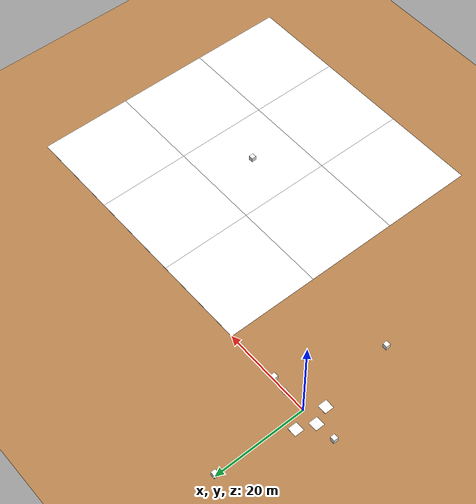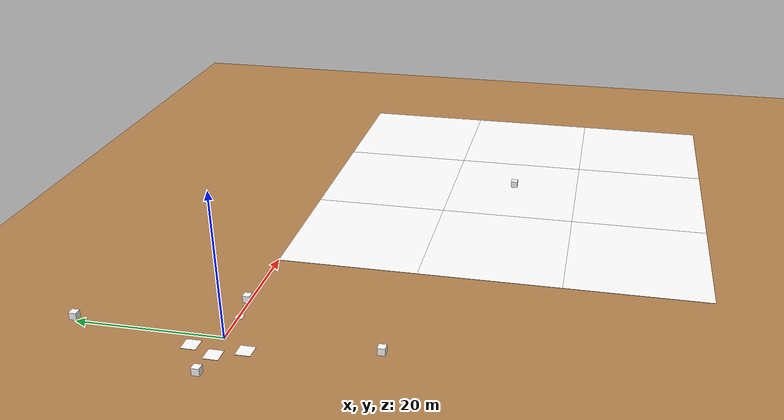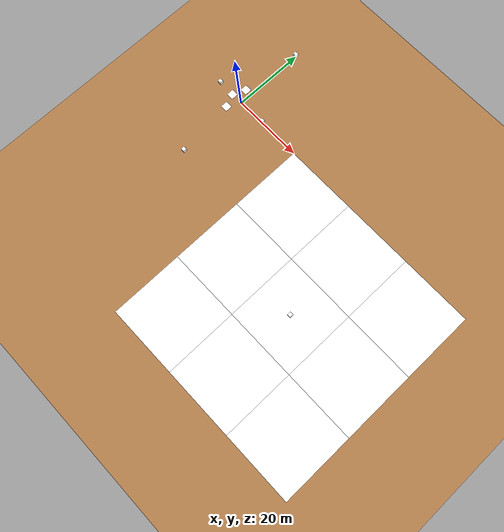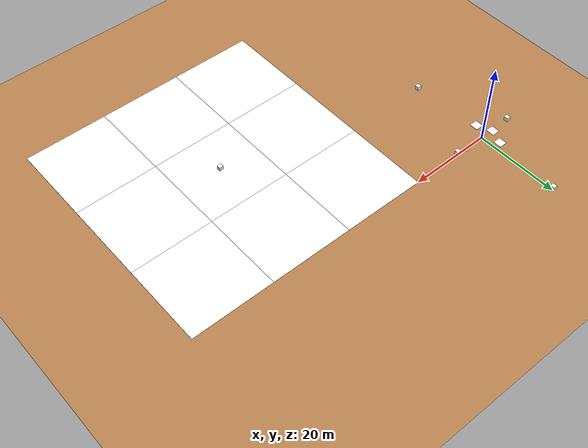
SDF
<sdf version="1.6">
 <world name="default">
  <physics type="ode">
   <real_time_factor>1</real_time_factor>
   <ode>
    <solver><type>quick</type><iters>100</iters><sor>1.0</sor></solver>
    <constraints>
     <cfm>0.0</cfm>
     <erp>0.2</erp>
     <contact_max_correcting_vel>0.1</contact_max_correcting_vel>
     <contact_surface_layer>0.0</contact_surface_layer>
    </constraints>
   </ode>
   <real_time_update_rate>-1</real_time_update_rate>
  </physics>
  <gravity>0 0 -9.8</gravity>
  <include><uri>model://sun</uri><pose>0 0 0 0 1 1</pose></include>
  <model name="ground_plane">
   <static>true</static>
   <link name="link">
    <collision name="collision">
     <geometry><plane><normal>0 0 1</normal><size>500 250</size></plane></geometry>
     <surface><friction><ode><mu>100</mu><mu2>50</mu2></ode></friction></surface>
    </collision>
    <visual name="playground">
     <pose>000 0 0.009 0 0 0</pose>
     <cast_shadows>false</cast_shadows>
     <geometry><plane><normal>0 0 1</normal><size>10 5</size></plane></geometry>
     <material>
      <script><uri>file://media/materials/scripts/gazebo.material</uri><name>Gazebo/WoodFloor</name></script>
     </material>
    </visual>
    <visual name="grass">
     <pose>0 0 -0.1 0 0 0</pose>
     <cast_shadows>false</cast_shadows>
     <geometry><plane><normal>0 0 1</normal><size>500 250</size></plane></geometry>
     <material>
      <script><uri>file://media/materials/scripts/gazebo.material</uri><name>Gazebo/Grass</name></script>
     </material>
    </visual>
   </link>
  </model>
  <model name="T_zone">
   <include><uri>model:///Gazebo/T_zone</uri><pose>5 0 0 0 0 1.5</pose><name>"T_zone_1"</name></include>
  </model>
  <model name="Medium_NFZ_zone">
   <include>
    <uri>model:///Gazebo/Medium_NFZ_zone</uri>
    <pose>-2 -3.5 0 0 0 0</pose>
    <name>"Medium_NFZ_zone"</name>
   </include>
  </model>
  <model name="Medium_FOZ_zone">
   <include>
    <uri>model:///Gazebo/Medium_FOZ_zone</uri>
    <pose>-2 3.5 0 0 0 0</pose>
    <name>"Medium_FOZ_zone"</name>
   </include>
  </model>
  <model name="Medium_ELZ_zone">
   <include>
    <uri>model:///Gazebo/Medium_ELZ_zone</uri>
    <pose>-3.5 0 0 0 0 0</pose>
    <name>"Medium_ELZ_zone"</name>
   </include>
  </model>
  <model name="ELZ_zone">
   <include><uri>model:///Gazebo/ELZ_zone</uri><pose>50 -30 0 0 0 0</pose><name>"ELZ_zone"</name></include>
  </model>
  <model name="ELZ_zone2">
   <include><uri>model:///Gazebo/ELZ_zone</uri><pose>30 -10 0 0 0 0</pose><name>"ELZ_zone"</name></include>
  </model>
  <model name="FOZ_zone">
   <include><uri>model:///Gazebo/FOZ_zone</uri><pose>50 -10 0 0 0 0</pose><name>"FOZ_zone"</name></include>
  </model>
  <model name="FOZ_zone2">
   <include><uri>model:///Gazebo/FOZ_zone</uri><pose>50 -50 0 0 0 0</pose><name>"FOZ_zone"</name></include>
  </model>
  <model name="FOZ_zone3">
   <include><uri>model:///Gazebo/FOZ_zone</uri><pose>70 -30 0 0 0 0</pose><name>"FOZ_zone"</name></include>
  </model>
  <model name="FOZ_zone4">
   <include><uri>model:///Gazebo/FOZ_zone</uri><pose>30 -30 0 0 0 0</pose><name>"FOZ_zone"</name></include>
  </model>
  <model name="FOZ_zone4">
   <include><uri>model:///Gazebo/FOZ_zone</uri><pose>30 -50 0 0 0 0</pose><name>"FOZ_zone"</name></include>
  </model>
  <model name="FOZ_zone5">
   <include><uri>model:///Gazebo/FOZ_zone</uri><pose>70 -10 0 0 0 0</pose><name>"FOZ_zone"</name></include>
  </model>
  <model name="NFZ_zone">
   <include><uri>model:///Gazebo/NFZ_zone</uri><pose>70 -50 0 0 0 0</pose><name>"NFZ_zone"</name></include>
  </model>
  <model name="NFZ_zone2">
   <include><uri>model:///Gazebo/NFZ_zone</uri><pose>30 -50 0 0 0 0</pose><name>"NFZ_zone"</name></include>
  </model>
  <model name="RR_zone"><include><uri>model:///Gazebo/RR_zone</uri><name>"RR_zone"</name></include></model>
  <model name="trumpy_box">
   <include>
    <uri>model:///Gazebo/Cube_Target</uri>
    <pose>50 -30 1 0 0 0</pose>
    <name>"Cube_Target2"</name>
   </include>
  </model>
  <model name="trumpy_box2">
   <include><uri>model:///Gazebo/Cube_Target</uri><pose>8 0 1 0 0 0</pose><name>"Cube_Target2"</name></include>
  </model>
  <model name="trumpy_box3">
   <include>
    <uri>model:///Gazebo/Cube_Target</uri>
    <pose>-8 0 1 0 0 -3.14</pose>
    <name>"Cube_Target2"</name>
   </include>
  </model>
  <model name="trumpy_box4">
   <include>
    <uri>model:///Gazebo/Cube_Target</uri>
    <pose>0 20 1 0 0 1.57</pose>
    <name>"Cube_Target2"</name>
   </include>
  </model>
  <model name="trumpy_box5">
   <include>
    <uri>model:///Gazebo/Cube_Target</uri>
    <pose>-0 -20 1 0 0 -1.57</pose>
    <name>"Cube_Target2"</name>
   </include>
  </model>
  <wind><linear_velocity>0 0 0</linear_velocity></wind>
  <plugin name="wind" filename="libWindPlugin.so">
   <horizontal>
    <magnitude>
     <time_for_rise>10</time_for_rise>
     <sin><amplitude_percent>0.05</amplitude_percent><period>60</period></sin>
     <noise type="gaussian"><mean>0</mean><stddev>0.0002</stddev></noise>
    </magnitude>
    <direction>
     <time_for_rise>30</time_for_rise>
     <sin><amplitude>5</amplitude><period>20</period></sin>
     <noise type="gaussian"><mean>0</mean><stddev>0.03</stddev></noise>
    </direction>
   </horizontal>
   <vertical><noise type="gaussian"><mean>0</mean><stddev>0.03</stddev></noise></vertical>
  </plugin>
 </world>
</sdf>

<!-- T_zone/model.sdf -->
<sdf version='1.6'>
  <model name='T_zone'>
    <pose> 0 0 0 0 -0 0</pose>
    <static>True</static>
    <link name='T_zone_link'>
      <collision name='T_zone_link_Collision'>
        <pose>0 0 0 0 -0 0</pose>
        <geometry>
          <box>
            <size>1 1 0.05</size>
          </box>
        </geometry>
        <surface>
            <friction>
              <ode>
                <mu>100</mu>
                <mu2>50</mu2>
              </ode>
            </friction>
          </surface>
      </collision>
      <visual name='T_zone_link_Visual'>
        <pose>0 0 0 0 -0 0</pose>
        <geometry>
          <box>
            <size>1 1 0.05</size>
          </box>
        </geometry>
        <scale>1 1 1</scale>
        <material>
          <script>
              <uri>model:///Gazebo/T_zone/materials/scripts</uri>
              <uri>model:///Gazebo/T_zone/materials/textures</uri>
              <name>T_zone/Diffuse</name>
          </script>
          <ambient>1 1 1 1</ambient>
        </material>
        <meta>
          <layer>0</layer>
        </meta>
      </visual>
    </link>
  </model>
</sdf>

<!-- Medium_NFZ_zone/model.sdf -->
<sdf version='1.6'>
  <model name='Medium_NFZ_zone'>
    <pose> 0 0 0 0 -0 0</pose>
    <static>True</static>
    <link name='Medium_NFZ_zone_link'>
      <collision name='Medium_NFZ_zone_link_Collision'>
        <pose>0 0 0 0 -0 0</pose>
        <geometry>
          <box>
            <size>2 2 0.05</size>
          </box>
        </geometry>
        <surface>
            <friction>
              <ode>
                <mu>100</mu>
                <mu2>50</mu2>
              </ode>
            </friction>
          </surface>
      </collision>
      <visual name='Medium_NFZ_zone_link_Visual'>
        <pose>0 0 0 0 -0 0</pose>
        <geometry>
          <box>
            <size>2 2 0.05</size>
          </box>
        </geometry>
        <scale>1 1 1</scale>
        <material>
          <script>
              <uri>model:///Gazebo/Medium_NFZ_zone/materials/scripts</uri>
              <uri>model:///Gazebo/Medium_NFZ_zone/materials/textures</uri>
              <name>NFZ_zone/Diffuse</name>
          </script>
          <ambient>1 1 1 1</ambient>
        </material>
        <meta>
          <layer>0</layer>
        </meta>
      </visual>
    </link>
  </model>
</sdf>

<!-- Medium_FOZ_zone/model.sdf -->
<sdf version='1.6'>
  <model name='Medium_FOZ_zone'>
    <pose> 0 0 0 0 -0 0</pose>
    <static>True</static>
    <link name='Medium_FOZ_zone_link'>
      <collision name='Medium_FOZ_zone_link_Collision'>
        <pose>0 0 0 0 -0 0</pose>
        <geometry>
          <box>
            <size>2 2 0.05</size>
          </box>
        </geometry>
        <surface>
            <friction>
              <ode>
                <mu>100</mu>
                <mu2>50</mu2>
              </ode>
            </friction>
          </surface>
      </collision>
      <visual name='Medium_FOZ_zone_link_Visual'>
        <pose>0 0 0 0 -0 0</pose>
        <geometry>
          <box>
            <size>2 2 0.05</size>
          </box>
        </geometry>
        <scale>1 1 1</scale>
        <material>
          <script>
              <uri>model:///Gazebo/Medium_FOZ_zone/materials/scripts</uri>
              <uri>model:///Gazebo/Medium_FOZ_zone/materials/textures</uri>
              <name>FOZ_zone/Diffuse</name>
          </script>
          <ambient>1 1 1 1</ambient>
        </material>
        <meta>
          <layer>0</layer>
        </meta>
      </visual>
    </link>
  </model>
</sdf>

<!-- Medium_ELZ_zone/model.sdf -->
<sdf version='1.6'>
  <model name='Medium_ELZ_zone'>
    <pose> 0 0 0 0 -0 0</pose>
    <static>True</static>
    <link name='Medium_ELZ_zone_link'>
      <collision name='Medium_ELZ_zone_link_Collision'>
        <pose>0 0 0 0 -0 0</pose>
        <geometry>
          <box>
            <size>2 2 0.05</size>
          </box>
        </geometry>
        <surface>
            <friction>
              <ode>
                <mu>100</mu>
                <mu2>50</mu2>
              </ode>
            </friction>
          </surface>
      </collision>
      <visual name='Medium_ELZ_zone_link_Visual'>
        <pose>0 0 0 0 -0 0</pose>
        <geometry>
          <box>
            <size>2 2 0.05</size>
          </box>
        </geometry>
        <scale>1 1 1</scale>
        <material>
          <script>
              <uri>model:///Gazebo/Medium_ELZ_zone/materials/scripts</uri>
              <uri>model:///Gazebo/Medium_ELZ_zone/materials/textures</uri>
              <name>ELZ_zone/Diffuse</name>
          </script>
          <ambient>1 1 1 1</ambient>
        </material>
        <meta>
          <layer>0</layer>
        </meta>
      </visual>
    </link>
  </model>
</sdf>

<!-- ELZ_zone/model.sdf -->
<sdf version='1.6'>
  <model name='ELZ_zone'>
    <pose> 0 0 0 0 -0 0</pose>
    <static>True</static>
    <link name='ELZ_zone_link'>
      <collision name='ELZ_zone_link_Collision'>
        <pose>0 0 0 0 -0 0</pose>
        <geometry>
          <box>
            <size>20 20 0.05</size>
          </box>
        </geometry>
        <surface>
            <friction>
              <ode>
                <mu>100</mu>
                <mu2>50</mu2>
              </ode>
            </friction>
          </surface>
      </collision>
      <visual name='ELZ_zone_link_Visual'>
        <pose>0 0 0 0 -0 0</pose>
        <geometry>
          <box>
            <size>20 20 0.05</size>
          </box>
        </geometry>
        <scale>1 1 1</scale>
        <material>
          <script>
              <uri>model:///Gazebo/ELZ_zone/materials/scripts</uri>
              <uri>model:///Gazebo/ELZ_zone/materials/textures</uri>
              <name>ELZ_zone/Diffuse</name>
          </script>
          <ambient>1 1 1 1</ambient>
        </material>
        <meta>
          <layer>0</layer>
        </meta>
      </visual>
    </link>
  </model>
</sdf>

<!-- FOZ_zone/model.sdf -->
<sdf version='1.6'>
  <model name='FOZ_zone'>
    <pose> 0 0 0 0 -0 0</pose>
    <static>True</static>
    <link name='FOZ_zone_link'>
      <collision name='FOZ_zone_link_Collision'>
        <pose>0 0 0 0 -0 0</pose>
        <geometry>
          <box>
            <size>20 20 0.05</size>
          </box>
        </geometry>
        <surface>
            <friction>
              <ode>
                <mu>100</mu>
                <mu2>50</mu2>
              </ode>
            </friction>
          </surface>
      </collision>
      <visual name='FOZ_zone_link_Visual'>
        <pose>0 0 0 0 -0 0</pose>
        <geometry>
          <box>
            <size>20 20 0.05</size>
          </box>
        </geometry>
        <scale>1 1 1</scale>
        <material>
          <script>
              <uri>model:///Gazebo/FOZ_zone/materials/scripts</uri>
              <uri>model:///Gazebo/FOZ_zone/materials/textures</uri>
              <name>FOZ_zone/Diffuse</name>
          </script>
          <ambient>1 1 1 1</ambient>
        </material>
        <meta>
          <layer>0</layer>
        </meta>
      </visual>
    </link>
  </model>
</sdf>

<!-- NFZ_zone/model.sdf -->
<sdf version='1.6'>
  <model name='NFZ_zone'>
    <pose> 0 0 0 0 -0 0</pose>
    <static>True</static>
    <link name='NFZ_zone_link'>
      <collision name='NFZ_zone_link_Collision'>
        <pose>0 0 0 0 -0 0</pose>
        <geometry>
          <box>
            <size>20 20 0.05</size>
          </box>
        </geometry>
        <surface>
            <friction>
              <ode>
                <mu>100</mu>
                <mu2>50</mu2>
              </ode>
            </friction>
          </surface>
      </collision>
      <visual name='NFZ_zone_link_Visual'>
        <pose>0 0 0 0 -0 0</pose>
        <geometry>
          <box>
            <size>20 20 0.05</size>
          </box>
        </geometry>
        <scale>1 1 1</scale>
        <material>
          <script>
              <uri>model:///Gazebo/NFZ_zone/materials/scripts</uri>
              <uri>model:///Gazebo/NFZ_zone/materials/textures</uri>
              <name>NFZ_zone/Diffuse</name>
          </script>
          <ambient>1 1 1 1</ambient>
        </material>
        <meta>
          <layer>0</layer>
        </meta>
      </visual>
    </link>
  </model>
</sdf>

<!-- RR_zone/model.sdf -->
<sdf version='1.6'>
  <model name='RR_zone'>
    <pose> 0 0 0 0 -0 0</pose>
    <static>True</static>
    <link name='RR_zone_link'>
      <collision name='RR_zone_link_Collision'>
        <pose>0 0 0 0 -0 0</pose>
        <geometry>
          <box>
            <size>0.15 0.15 0.05</size>
          </box>
        </geometry>
        <surface>
            <friction>
              <ode>
                <mu>100</mu>
                <mu2>50</mu2>
              </ode>
            </friction>
          </surface>
      </collision>
      <visual name='RR_zone_link_Visual'>
        <pose>0 0 0 0 -0 0</pose>
        <geometry>
          <box>
            <size>0.15 0.15 0.05</size>
          </box>
        </geometry>
        <scale>1 1 1</scale>
        <material>
          <script>
              <uri>model:///Gazebo/RR_zone/materials/scripts</uri>
              <uri>model:///Gazebo/RR_zone/materials/textures</uri>
              <name>RR_zone/Diffuse</name>
          </script>
          <ambient>1 1 1 1</ambient>
        </material>
        <meta>
          <layer>0</layer>
        </meta>
      </visual>
    </link>
  </model>
</sdf>

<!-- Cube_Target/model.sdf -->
<sdf version='1.6'>
  <model name='Cube_Target'>
    <pose> 0 0 0 0 -0 0</pose>
    <static>True</static>
    <link name='Cube_Target_link'>
      <collision name='Cube_Target_link_Collision'>
        <pose>0 0 0 0 -0 0</pose>
        <geometry>
          <box>
            <size>1 1 1</size>
          </box>
        </geometry>
        <surface>
            <friction>
              <ode>
                <mu>100</mu>
                <mu2>50</mu2>
              </ode>
            </friction>
          </surface>
      </collision>
      <visual name='Cube_Target_link_Visual'>
        <pose>0 0 0 0 -0 0</pose>
        <geometry>
          <box>
            <size>1 1 1</size>
          </box>
        </geometry>
        <scale>1 1 1</scale>
        <material>
          <script>
              <uri>model:///Gazebo/Cube_Target/materials/scripts</uri>
              <uri>model:///Gazebo/Cube_Target/materials/textures</uri>
              <name>Cube_Target/Diffuse</name>
          </script>
          <ambient>1 1 1 1</ambient>
        </material>
        <meta>
          <layer>0</layer>
        </meta>
      </visual>
    </link>

  </model>
</sdf>
